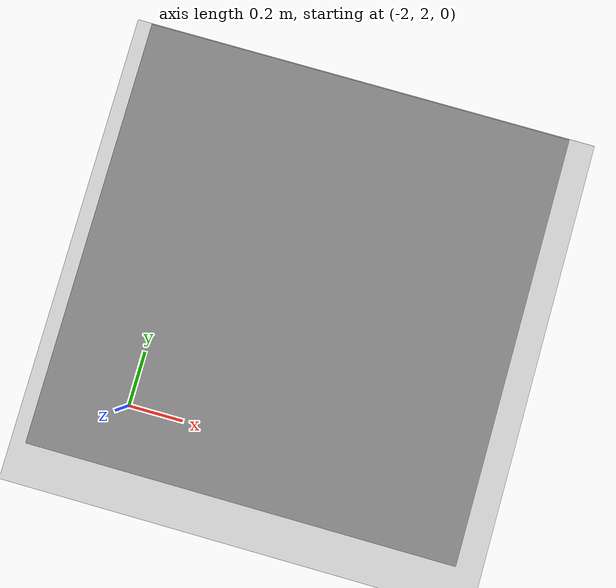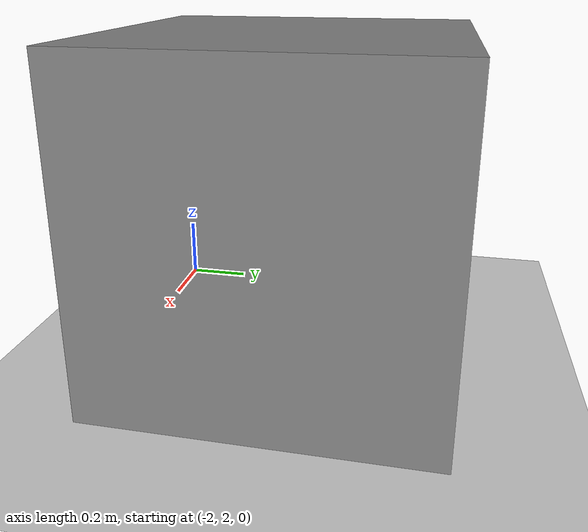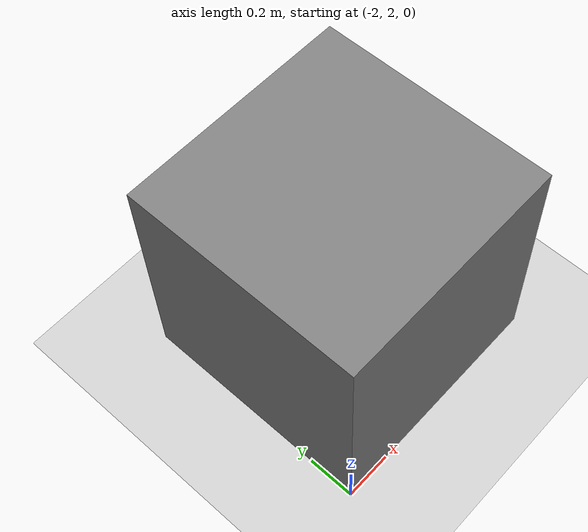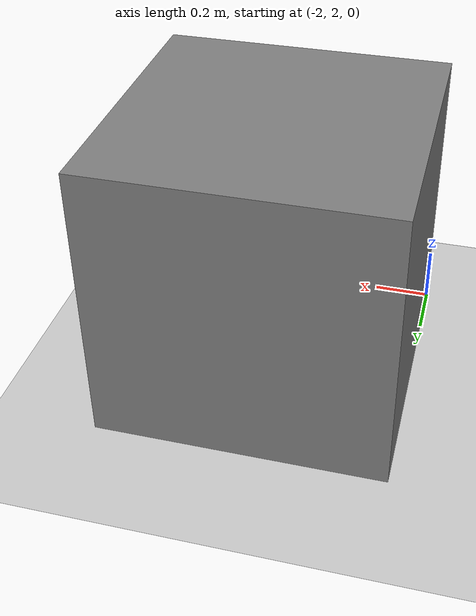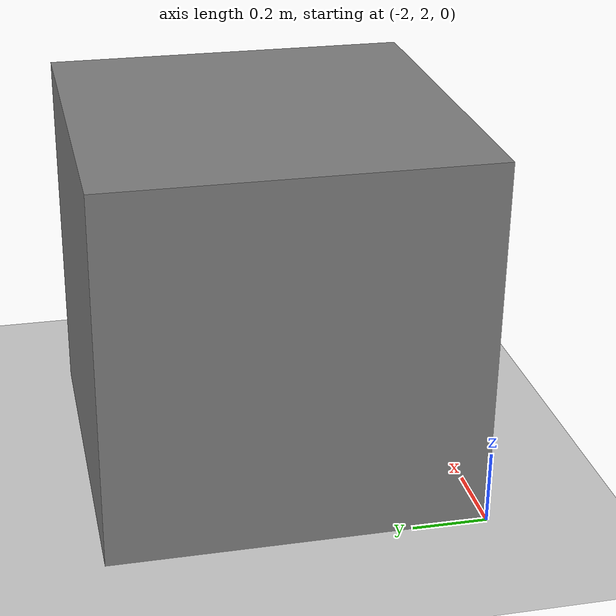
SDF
<?xml version="1.0" ?>
<sdf version="1.8">
  <!-- Port of the ROS 1 example.world for gz-sim (Gazebo Jetty):
       sun/ground_plane inlined, classic material script replaced
       with a diffuse colour. -->
  <world name="default">

    <physics name="1ms" type="ignored">
      <max_step_size>0.001</max_step_size>
      <real_time_factor>1.0</real_time_factor>
    </physics>

    <plugin filename="gz-sim-physics-system" name="gz::sim::systems::Physics"/>
    <plugin filename="gz-sim-user-commands-system" name="gz::sim::systems::UserCommands"/>
    <plugin filename="gz-sim-scene-broadcaster-system" name="gz::sim::systems::SceneBroadcaster"/>
    <!-- Rendering-based sensors (VLP-16 lidar) -->
    <plugin filename="gz-sim-sensors-system" name="gz::sim::systems::Sensors">
      <render_engine>ogre2</render_engine>
    </plugin>
    <!-- Non-rendering sensors (these have dedicated systems in gz-sim) -->
    <plugin filename="gz-sim-imu-system" name="gz::sim::systems::Imu"/>
    <plugin filename="gz-sim-magnetometer-system" name="gz::sim::systems::Magnetometer"/>
    <plugin filename="gz-sim-navsat-system" name="gz::sim::systems::NavSat"/>

    <model name="ground_plane">
      <static>true</static>
      <link name="link">
        <collision name="collision">
          <geometry>
            <plane>
              <normal>0 0 1</normal>
              <size>100 100</size>
            </plane>
          </geometry>
        </collision>
        <visual name="visual">
          <geometry>
            <plane>
              <normal>0 0 1</normal>
              <size>100 100</size>
            </plane>
          </geometry>
          <material>
            <ambient>0.8 0.8 0.8 1</ambient>
            <diffuse>0.8 0.8 0.8 1</diffuse>
            <specular>0.8 0.8 0.8 1</specular>
          </material>
        </visual>
      </link>
    </model>

    <light type="directional" name="sun">
      <cast_shadows>true</cast_shadows>
      <pose>0 0 10 0 0 0</pose>
      <diffuse>0.8 0.8 0.8 1</diffuse>
      <specular>0.2 0.2 0.2 1</specular>
      <direction>-0.5 0.1 -0.9</direction>
    </light>

    <model name="unit_box_0_0">
      <pose>-1.5 2.5 0.5 0 -0 0</pose>
      <link name="link">
        <inertial>
          <mass>1</mass>
          <inertia>
            <ixx>0.166667</ixx>
            <ixy>0</ixy>
            <ixz>0</ixz>
            <iyy>0.166667</iyy>
            <iyz>0</iyz>
            <izz>0.166667</izz>
          </inertia>
        </inertial>
        <collision name="collision">
          <geometry>
            <box>
              <size>1 1 1</size>
            </box>
          </geometry>
        </collision>
        <visual name="visual">
          <geometry>
            <box>
              <size>1 1 1</size>
            </box>
          </geometry>
          <material>
            <ambient>0.5 0.5 0.5 1</ambient>
            <diffuse>0.5 0.5 0.5 1</diffuse>
            <specular>0.5 0.5 0.5 1</specular>
          </material>
        </visual>
      </link>
    </model>

  </world>
</sdf>
